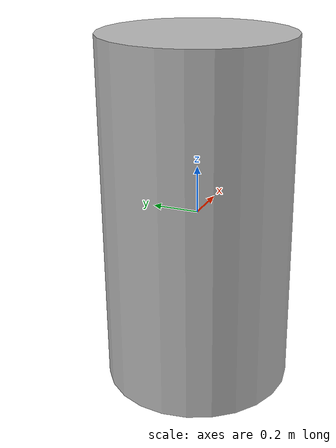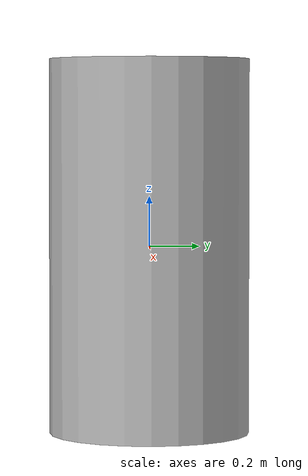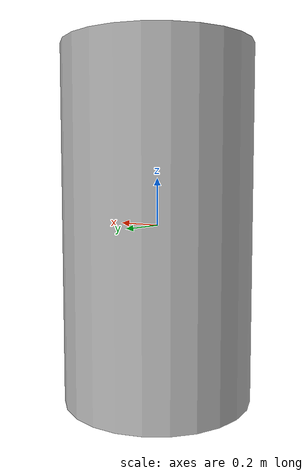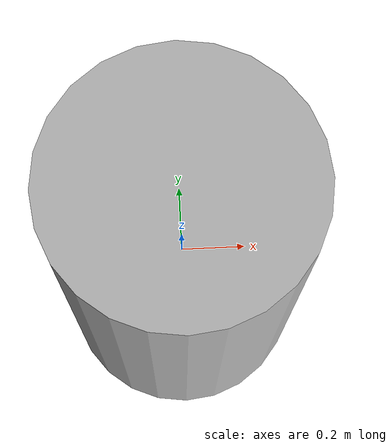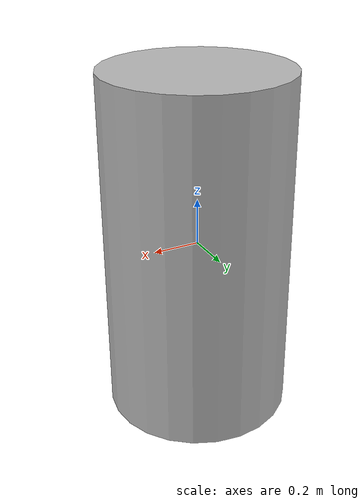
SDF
<?xml version='1.0'?>
<sdf version='1.4'>
<model name="camera">

  <link name="base">
    <gravity>0</gravity>
    <pose>0 0 0 0 0 0</pose>
    <collision name="base_collision">
      <geometry>
        <cylinder>
          <radius>.4</radius>
          <length>1.5</length>
        </cylinder>
      </geometry>
    </collision>

    <visual name="base_visual">
      <geometry>
        <cylinder>
          <radius>.4</radius>
          <length>1.5</length>
        </cylinder>
      </geometry>
    </visual>
  </link>
<!-- *********************** DEPTH CAMERA ******************************  -->
<!-- The depth camera (e.g. Intel Realsense camera). -->
<link name="camera_depth_frame">
  <pose>0.12 0 0.65 -1.5708 0 -1.5708</pose>
</link>

<link name="camera_link">
  <pose>0.12 0 0.65 0 0 0</pose>

  <visual name="camera_visual">
    <pose>-0.005 0 0 0 0 0</pose>
    <geometry>
      <box>
        <size>0.015 0.08 0.022</size>
      </box>
    </geometry>
    <material>
      <ambient>0 0 0 1.0</ambient>
      <diffuse>0 0 0 1.0</diffuse>
      <specular>0.0 0.0 0.0 1.0</specular>
      <emissive>0.0 0.0 0.0 1.0</emissive>
    </material>
  </visual>

  <sensor name="depth_camera" type="camera">
    <always_on>true</always_on>
    <visualize>false</visualize>
    <update_rate>5</update_rate>
    <camera name="camera">
      <horizontal_fov>1.02974</horizontal_fov>
      <image>
        <width>640</width>
        <height>480</height>
        <format>R8G8B8</format>
      </image>
      <clip>
        <near>0.02</near>
        <far>10</far>
      </clip>
      <noise>
        <type>gaussian</type>
        <mean>0.0</mean>
        <stddev>0.007</stddev>
      </noise>
    </camera>
        _obj=Pose()
        _obj.position.x = 50+i
        _obj.position.y = 50
        _obj.position.z = 0
        spawn_model_client = rospy.ServiceProxy('/gazebo/spawn_sdf_model', SpawnModel)
        spawn_model_client(
        model_name='zylinder'+str(i),
            model_xml=open('/home/matthias/catkin_ws/src/myDrone/urdf/zylinder.sdf', 'r').read(),
            robot_namespace='/zylinder',
            initial_pose=_obj,
            reference_frame='world'
        )
  </sensor>
</link>
</model>
</sdf>
